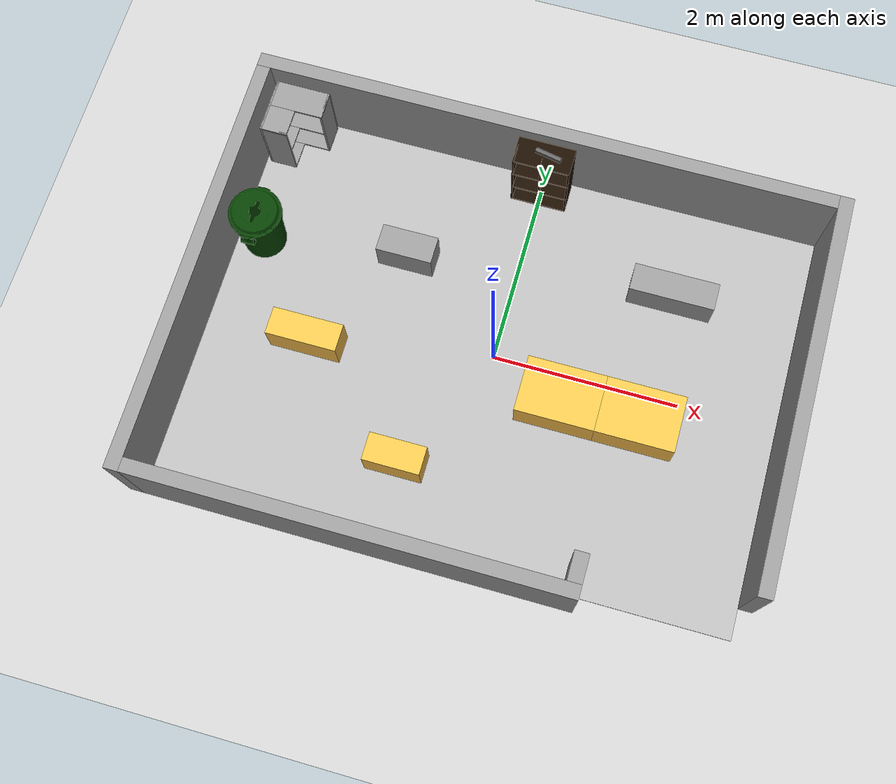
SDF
<sdf version="1.5">
 <world name="default">
  <scene><shadows>true</shadows></scene>
  <light name="sun" type="directional">
   <pose>0 0 10 0 -0 0</pose>
   <diffuse>0.8 0.8 0.8 1</diffuse>
   <specular>0.1 0.1 0.1 1</specular>
   <attenuation>
    <range>1000</range>
    <constant>0.9</constant>
    <linear>0.01</linear>
    <quadratic>0.001</quadratic>
   </attenuation>
   <direction>-0.5 0.5 -1</direction>
  </light>
  <physics type="ode">
   <max_step_size>0.001</max_step_size>
   <real_time_factor>1</real_time_factor>
   <real_time_update_rate>1000</real_time_update_rate>
   <gravity>0 0 -9.8</gravity>
  </physics>
  <include><uri>model://ground_plane</uri></include>
  <include><uri>model://Workshop</uri></include>
  <include><pose>-1.936710 -0.343286 0.013 0 0 -1.57</pose><uri>model://Box_15x30</uri></include>
  <include><pose>1.636 -0.3 0.013 0 0 0</pose><uri>model://Box_33x15</uri></include>
  <include><pose>0.8 -0.3 0.013 0 0 0</pose><uri>model://Box_33x15</uri></include>
  <include><pose>1.658951 1.141109 0.013 0 0 0</pose><uri>model://Box_36x15W</uri></include>
  <include><pose>0 1.986729 0.013002 0 0 0</pose><uri>model://6_Cube_StorageE</uri></include>
  <include><pose>-0.653226 -1.356719 0.013 0 0 0</pose><uri>model://Box_24x15M</uri></include>
  <include><pose>-1.184366 0.857670 0.013 0 0 0</pose><uri>model://Box_24x15W</uri></include>
  <include>
   <pose>-2.710050 1.858030 0.013 0 0 -1.574973</pose>
   <uri>model://Wall_Cabinet_Coin_24x30W</uri>
  </include>
  <include><pose>0.0443 1.991597 0.947936 0.194664 1.558386 0.000047</pose><uri>model://pole</uri></include>
  <include>
   <pose>-2.756142 0.652103 0.012998 0.00 0.000012 -0.001068</pose>
   <uri>model://first_2015_trash_can</uri>
  </include>
  <include>
   <pose>1.410258 1.102871 0.396594 0.021135 -0.024223 -0.000242</pose>
   <uri>model://washer</uri>
  </include>
  <include>
   <pose>1.325672 1.164408 0.396676 0.012398 -0.011495 0.000071</pose>
   <uri>model://washer</uri>
  </include>
  <plugin name="gazebo_ros_state" filename="libgazebo_ros_state.so"/>
 </world>
</sdf>

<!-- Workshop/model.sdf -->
<sdf version='1.6'>
  <model name='Workshop'>

    <link name='Wall_10'>
      <collision name='Wall_10_Collision'>
        <geometry>
          <box>
            <size>6.26 0.15 1</size>
          </box>
        </geometry>
        <pose frame=''>0 0 0.5 0 -0 0</pose>
      </collision>
      <visual name='Wall_10_Visual'>
        <pose frame=''>0 0 0.5 0 -0 0</pose>
        <geometry>
          <box>
            <size>6.26 0.15 1</size>
          </box>
        </geometry>
        <material>
          <script>
            <uri>file://media/materials/scripts/gazebo.material</uri>
            <name>Gazebo/Grey</name>
          </script>
          <ambient>0 0 0 1</ambient>
        </material>
      </visual>
      <pose frame=''>-0.0745 2.24856 0 0 0 0</pose>
    </link>
    <link name='Wall_11'>
      <collision name='Wall_11_Collision'>
        <geometry>
          <box>
            <size>4.199944 0.15 1</size>
          </box>
        </geometry>
        <pose frame=''>0 0 0.5 0 -0 0</pose>
      </collision>
      <visual name='Wall_11_Visual'>
        <pose frame=''>0 0 0.5 0 -0 0</pose>
        <geometry>
          <box>
            <size>4.199944 0.15 1</size>
          </box>
        </geometry>
        <material>
          <script>
            <uri>file://media/materials/scripts/gazebo.material</uri>
            <name>Gazebo/Grey</name>
          </script>
          <ambient>0 0 0 1</ambient>
        </material>
      </visual>
      <pose frame=''>3.12000 0.223500 0 0 0 -1.5708</pose>
    </link>
    <link name='Wall_13'>
      <collision name='Wall_13_Collision'>
        <geometry>
          <box>
            <size>4.557060 0.15 1</size>
          </box>
        </geometry>
        <pose frame=''>0 0 0.5 0 -0 0</pose>
      </collision>
      <visual name='Wall_13_Visual'>
        <pose frame=''>0 0 0.5 0 -0 0</pose>
        <geometry>
          <box>
            <size>4.557060 0.15 1</size>
          </box>
        </geometry>
        <material>
          <script>
            <uri>file://media/materials/scripts/gazebo.material</uri>
            <name>Gazebo/Grey</name>
          </script>
          <ambient>0 0 0 1</ambient>
        </material>
      </visual>
      <pose frame=''>-3.129500 -0.075000 0 0 0 -1.5708</pose>
    </link>
    <link name='Wall_15'>
      <collision name='Wall_15_Collision'>
        <geometry>
          <box>
            <size>4.521 0.15 1</size>
          </box>
        </geometry>
        <pose frame=''>0 0 0.5 0 -0 0</pose>
      </collision>
      <visual name='Wall_15_Visual'>
        <pose frame=''>0 0 0.5 0 -0 0</pose>
        <geometry>
          <box>
            <size>4.521 0.15 1</size>
          </box>
        </geometry>
        <material>
          <script>
            <uri>file://media/materials/scripts/gazebo.material</uri>
            <name>Gazebo/Grey</name>
          </script>
          <ambient>0 0 0 1</ambient>
        </material>
      </visual>
      <pose frame=''>-0.794000 -2.278500 0 0 -0 0</pose>
    </link>
    <link name='Wall_17'>
      <collision name='Wall_17_Collision'>
        <geometry>
          <box>
            <size>0.302 0.15 1</size>
          </box>
        </geometry>
        <pose frame=''>0 0 0.5 0 -0 0</pose>
      </collision>
      <visual name='Wall_17_Visual'>
        <pose frame=''>0 0 0.5 0 -0 0</pose>
        <geometry>
          <box>
            <size>0.302 0.15 1</size>
          </box>
        </geometry>
        <material>
          <script>
            <uri>file://media/materials/scripts/gazebo.material</uri>
            <name>Gazebo/Grey</name>
          </script>
          <ambient>0 0 0 1</ambient>
        </material>
      </visual>
      <pose frame=''>1.392000 -2.057440 0 0 -0 1.5708</pose>
    </link>
    <link name='Wall_19'>
      <collision name='Wall_19_Collision'>
        <geometry>
          <box>
            <size>6.099 4.38 0.013</size>
          </box>
        </geometry>
        <pose frame=''>0 0 0.0065 0 -0 0</pose>
	 <surface>
          <friction>
            <ode>
              <mu>1</mu>
              <mu2>1</mu2>
            </ode>
          </friction>
	<bounce/>
            <contact>
              <ode/>
            </contact>
        </surface>
 	<max_contacts>10</max_contacts>
      </collision>
      <visual name='Wall_19_Visual'>
        <pose frame=''>0 0 0.0065 0 -0 0</pose>
        <geometry>
          <box>
            <size>6.099 4.38 0.013</size>
          </box>
        </geometry>
           <material>
          <script>
            <uri>model://Workshop/materials/scripts</uri>
            <uri>model://Workshop/materials/textures</uri>
            <name>rubber</name>
          </script>
        </material>
      </visual>
      <pose frame=''>-0.005116 -0.013556 0 0 -0 0</pose>
 <velocity_decay>
          <linear>0</linear>
          <angular>0</angular>
        </velocity_decay>
        <self_collide>0</self_collide>
        <kinematic>0</kinematic>
        <gravity>1</gravity>
    </link>
    <static>1</static>
  </model>
</sdf>

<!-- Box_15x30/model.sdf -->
<sdf version='1.6'>
  <model name='Box_15x30'>
    <link name='Wall'>
     <pose frame=''>0 0.0 0.1985 0 0 0</pose>
	<inertial>
	  <mass>5</mass>
	   <inertia>
	     <ixx>0.3089</ixx>
	     <iyy>0.1022</iyy>
	     <izz>0.2797</izz>
    	     <ixy>0</ixy>
	     <ixz>0</ixz>
	     <iyz>0</iyz>
	   </inertia>
	</inertial>
      <collision name='Wall_Collision'>
        <geometry>
          <box>
            <size>0.296 0.764 0.397</size>
          </box>
        </geometry>
      </collision>
      <visual name='Wall_Visual'>
        <geometry>
          <box>
            <size>0.296 0.764 0.397</size>
          </box>
        </geometry>
        <material>
          <script>
            <uri>file://media/materials/scripts/gazebo.material</uri>
            <name>Gazebo/Grey</name>
          </script>
          <ambient>1 0.764706 0.305882 1</ambient>
        </material>
      </visual>
     </link>

    <static>1</static>
  </model>
</sdf>

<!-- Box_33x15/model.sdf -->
<sdf version='1.6'>
  <model name='Box_33x15'>
    <link name='Wall'>
    <pose frame=''>0 0 0.1985 0 0 0</pose>
	<inertial>
	  <mass>5</mass>
	   <inertia>
	     <ixx>0.2157</ixx>
	     <iyy>0.3597</iyy>
	     <izz>0.4440</izz>
    	     <ixy>0</ixy>
	     <ixz>0</ixz>
	     <iyz>0</iyz>
	   </inertia>
	</inertial>
      <collision name='Wall_Collision'>
        <geometry>
          <box>
            <size>0.84 0.6 0.397 </size>
          </box>
        </geometry>
       </collision>
      <visual name='Wall_Visual'>
       <geometry>
          <box>
            <size>0.84 0.6 0.397 </size>
          </box>
        </geometry>
        <material>
          <script>
            <uri>file://media/materials/scripts/gazebo.material</uri>
            <name>Gazebo/Grey</name>
          </script>
          <ambient>1 0.764706 0.305882 1</ambient>
        </material>
      </visual>
     </link>

    <static>1</static>
  </model>
</sdf>

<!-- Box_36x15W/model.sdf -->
<sdf version='1.6'>
  <model name='Box_36x15W'>
     <link name='Wall'>
 	<pose frame=''>0 0 0.1985 0 0 0</pose>
	<inertial>
	  <mass>5</mass>
	   <inertia>
	     <ixx>0.1022</ixx>
	     <iyy>0.4107</iyy>
	     <izz>0.3815</izz>
    	     <ixy>0</ixy>
	     <ixz>0</ixz>
	     <iyz>0</iyz>
	   </inertia>
	</inertial>
      <collision name='Wall_Collision'>
        <geometry>
          <box>
            <size>0.91 0.296 0.397</size>
          </box>
        </geometry>
      </collision>
      <visual name='Wall_Visual'>
          <geometry>
          <box>
            <size>0.91 0.296 0.397</size>
          </box>
        </geometry>
        <material>
          <script>
            <uri>file://media/materials/scripts/gazebo.material</uri>
            <name>Gazebo/Grey</name>
          </script>
          <ambient>1 1 1 1</ambient>
        </material>
      </visual>
    </link>

    <static>1</static>
  </model>
</sdf>

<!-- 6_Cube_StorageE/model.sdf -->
<sdf version='1.6'>
  <model name='6_Cube_StorageE'>

    <link name='Wall_0'>
    <pose frame=''>0 0 0.01 0 -0 0</pose>
	<inertial>
	  <mass>1.6201</mass>
	   <inertia>
	     <ixx>0.0119</ixx>
	     <iyy>0.0631</iyy>
	     <izz>0.0513</izz>
    	     <ixy>0</ixy>
	     <ixz>0</ixz>
	     <iyz>0</iyz>
	   </inertia>
	</inertial>
      <collision name='Wall_0_Collision'>
        <geometry>
          <box>
            <size>0.616 0.296 0.02</size>
          </box>
        </geometry>
      </collision>
      <visual name='Wall_0_Visual'>
        <geometry>
          <box>
            <size>0.616 0.296 0.02</size>
          </box>
        </geometry>
        <material>
          <script>
            <uri>file://media/materials/scripts/gazebo.material</uri>
            <name>Gazebo/Grey</name>
          </script>
          <ambient>0.105882 0.0509804 0 1</ambient>
        </material>
      </visual>
   </link>

     <joint type="fixed" name="0_2">
      <pose frame=''>-0.308 0 0 0 0 0</pose>
         <parent>Wall_2</parent>
  	 <child>Wall_0</child>
	 <axis>
	   <xyz>1 0 0</xyz>
	 </axis>
       </joint>

  <joint type="fixed" name="0_12">
      <pose frame=''>0 0 0 0 0 0</pose>
         <parent>Wall_12</parent>
  	 <child>Wall_0</child>
	 <axis>
	   <xyz>0 0 1</xyz>
	 </axis>
       </joint>

  <joint type="fixed" name="0_4">
      <pose frame=''>0.308 0 0 0 0 0</pose>
         <parent>Wall_4</parent>
  	 <child>Wall_0</child>
	 <axis>
	   <xyz>1 0 0</xyz>
	 </axis>
       </joint>

    <link name='Wall_10'>
      <pose frame=''>0 0 0.610 0 0 0</pose>
	<inertial>
	  <mass>1.6201</mass>
	   <inertia>
	     <ixx>0.0119</ixx>
	     <iyy>0.0631</iyy>
	     <izz>0.0513</izz>
    	     <ixy>0</ixy>
	     <ixz>0</ixz>
	     <iyz>0</iyz>
	   </inertia>
	</inertial>
      <collision name='Wall_10_Collision'>
        <geometry>
          <box>
            <size>0.616 0.296 0.02 </size>
          </box>
        </geometry>
      </collision>
      <visual name='Wall_10_Visual'>
          <geometry>
          <box>
            <size>0.616 0.296 0.02</size>
          </box>
        </geometry>
        <material>
          <script>
            <uri>file://media/materials/scripts/gazebo.material</uri>
            <name>Gazebo/Grey</name>
          </script>
          <ambient>0.105882 0.0509804 0 1</ambient>
        </material>
      </visual>
    </link>

     <joint type="fixed" name="10_2">
      <pose frame=''>-0.308 0 0 0 0 0</pose>
         <parent>Wall_2</parent>
  	 <child>Wall_10</child>
	 <axis>
	   <xyz>1 0 0</xyz>
	 </axis>
       </joint>

  <joint type="fixed" name="10_12">
      <pose frame=''>0 0 0 0 0 0</pose>
         <parent>Wall_12</parent>
  	 <child>Wall_10</child>
	 <axis>
	   <xyz>0 0 1</xyz>
	 </axis>
       </joint>

  <joint type="fixed" name="10_4">
      <pose frame=''>0.308 0 0 0 0 0</pose>
         <parent>Wall_4</parent>
  	 <child>Wall_10</child>
	 <axis>
	   <xyz>1 0 0</xyz>
	 </axis>
       </joint>

    <link name='Wall_12'>
  <pose frame=''>0 0 0.4575 0 0 0</pose>
	<inertial>
	  <mass>2.4065</mass>
	   <inertia>
	     <ixx>0.0177</ixx>
	     <iyy>0.1855</iyy>
	     <izz>0.1680</izz>
    	     <ixy>0</ixy>
	     <ixz>0</ixz>
	     <iyz>0</iyz>
	   </inertia>
	</inertial>
      <collision name='Wall_12_Collision'>
        <geometry>
          <box>
            <size>0.02 0.296 0.915</size>
          </box>
        </geometry>
      </collision>
      <visual name='Wall_12_Visual'>
         <geometry>
          <box>
            <size>0.02 0.296 0.915</size>
          </box>
        </geometry>
        <material>
          <script>
            <uri>file://media/materials/scripts/gazebo.material</uri>
            <name>Gazebo/Grey</name>
          </script>
          <ambient>0.105882 0.0509804 0 1</ambient>
        </material>
      </visual>
    </link>

    <link name='Wall_2'>
      <pose frame=''>-0.298 0 0.4575 0 0 0</pose>
	<inertial>
	  <mass>2.4065</mass>
	   <inertia>
	     <ixx>0.0177</ixx>
	     <iyy>0.1855</iyy>
	     <izz>0.1680</izz>
    	     <ixy>0</ixy>
	     <ixz>0</ixz>
	     <iyz>0</iyz>
	   </inertia>
	</inertial>
      <collision name='Wall_2_Collision'>
        <geometry>
          <box>
            <size>0.02 0.296 0.915</size>
          </box>
        </geometry>
      </collision>
      <visual name='Wall_2_Visual'>
        <geometry>
          <box>
            <size>0.02 0.296 0.915</size>
          </box>
        </geometry>
        <material>
          <script>
            <uri>file://media/materials/scripts/gazebo.material</uri>
            <name>Gazebo/Grey</name>
          </script>
          <ambient>0.105882 0.0509804 0 1</ambient>
        </material>
      </visual>
    </link>

    <link name='Wall_4'>
      <pose frame=''>0.298 0 0.4575 0 0 0</pose>
	<inertial>
	  <mass>2.4065</mass>
	   <inertia>
	     <ixx>0.0177</ixx>
	     <iyy>0.1855</iyy>
	     <izz>0.1680</izz>
    	     <ixy>0</ixy>
	     <ixz>0</ixz>
	     <iyz>0</iyz>
	   </inertia>
	</inertial>
      <collision name='Wall_4_Collision'>
        <geometry>
          <box>
            <size>0.02 0.296 0.915</size>
          </box>
        </geometry>
      </collision>
      <visual name='Wall_4_Visual'>
        <geometry>
          <box>
            <size>0.02 0.296 0.915</size>
          </box>
        </geometry>
        <material>
          <script>
            <uri>file://media/materials/scripts/gazebo.material</uri>
            <name>Gazebo/Grey</name>
          </script>
          <ambient>0.105882 0.0509804 0 1</ambient>
        </material>
      </visual>
    </link>

    <link name='Wall_6'>
     <pose frame=''>0 0 0.905 0 0 0</pose>
	<inertial>
	  <mass>1.6201</mass>
	   <inertia>
	     <ixx>0.0119</ixx>
	     <iyy>0.0631</iyy>
	     <izz>0.0513</izz>
    	     <ixy>0</ixy>
	     <ixz>0</ixz>
	     <iyz>0</iyz>
	   </inertia>
	</inertial>
      <collision name='Wall_6_Collision'>
        <geometry>
          <box>
            <size>0.616 0.296 0.02</size>
          </box>
        </geometry>
       </collision>
      <visual name='Wall_6_Visual'>
        <geometry>
          <box>
            <size>0.616 0.296 0.02</size>
          </box>
        </geometry>
        <material>
          <script>
            <uri>file://media/materials/scripts/gazebo.material</uri>
            <name>Gazebo/Grey</name>
          </script>
          <ambient>0.105882 0.0509804 0 1</ambient>
        </material>
      </visual>
     </link>

     <joint type="fixed" name="6_2">
      <pose frame=''>-0.308 0 0 0 0 0</pose>
         <parent>Wall_2</parent>
  	 <child>Wall_6</child>
	 <axis>
	   <xyz>2 0 0</xyz>
	 </axis>
       </joint>

  <joint type="fixed" name="6_12">
      <pose frame=''>0 0 0 0 0 0</pose>
         <parent>Wall_12</parent>
  	 <child>Wall_6</child>
	 <axis>
	   <xyz>0 0 1</xyz>
	 </axis>
       </joint>

  <joint type="fixed" name="6_4">
      <pose frame=''>0.308 0 0 0 0 0</pose>
         <parent>Wall_4</parent>
  	 <child>Wall_6</child>
	 <axis>
	   <xyz>1 0 0</xyz>
	 </axis>
       </joint>

    <link name='Wall_8'>
    <pose frame=''>0 0 0.305 0 0 0</pose>
	<inertial>
	  <mass>1.6201</mass>
	   <inertia>
	     <ixx>0.0119</ixx>
	     <iyy>0.0631</iyy>
	     <izz>0.0513</izz>
    	     <ixy>0</ixy>
	     <ixz>0</ixz>
	     <iyz>0</iyz>
	   </inertia>
	</inertial>
      <collision name='Wall_8_Collision'>
        <geometry>
          <box>
            <size>0.616 0.296 0.02</size>
          </box>
        </geometry>
       </collision>
      <visual name='Wall_8_Visual'>
        <geometry>
          <box>
            <size>0.616 0.296 0.02</size>
          </box>
        </geometry>
        <material>
          <script>
            <uri>file://media/materials/scripts/gazebo.material</uri>
            <name>Gazebo/Grey</name>
          </script>
          <ambient>0.105882 0.0509804 0 1</ambient>
        </material>
      </visual>
      </link>

     <joint type="fixed" name="8_2">
      <pose frame=''>-0.308 0 0 0 0 0</pose>
         <parent>Wall_2</parent>
  	 <child>Wall_8</child>
	 <axis>
	   <xyz>1 0 0</xyz>
	 </axis>
       </joint>

  <joint type="fixed" name="8_12">
      <pose frame=''>0 0 0 0 0 0</pose>
         <parent>Wall_12</parent>
  	 <child>Wall_8</child>
	 <axis>
	   <xyz>0 0 1</xyz>
	 </axis>
       </joint>

  <joint type="fixed" name="8_4">
      <pose frame=''>0.308 0 0 0 0 0</pose>
         <parent>Wall_4</parent>
  	 <child>Wall_8</child>
	 <axis>
	   <xyz>1 0 0</xyz>
	 </axis>
       </joint>

    <static>1</static>
  </model>
</sdf>

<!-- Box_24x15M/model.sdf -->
<sdf version='1.6'>
  <model name='Box_24x15M'>
    <link name='Wall'>
	<pose frame=''>0 0 0.1985 0 -0 0</pose>
	<inertial>
	  <mass>5</mass>
	   <inertia>
	     <ixx>0.1022</ixx>
	     <iyy>0.2197</iyy>
	     <izz>0.1905</izz>
    	     <ixy>0</ixy>
	     <ixz>0</ixz>
	     <iyz>0</iyz>
	   </inertia>
	</inertial>
      <collision name='Wall_Collision'>
        <geometry>
          <box>
            <size>0.608 0.296 0.397 </size>
          </box>
        </geometry>

      </collision>
      <visual name='Wall_Visual'>

        <geometry>
          <box>
            <size>0.608 0.296 0.397</size>
          </box>
        </geometry>
       <material>
          <script>
            <uri>file://media/materials/scripts/gazebo.material</uri>
            <name>Gazebo/Grey</name>
          </script>
          <ambient>1 0.764706 0.305882 1</ambient>
        </material>
      </visual>
    </link>

    <static>1</static>
  </model>
</sdf>

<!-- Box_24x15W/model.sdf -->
<sdf version='1.6'>
  <model name='Box_24x15W'>
    <link name='Wall'>
	<pose frame=''>0 0 0.1985 0 0 0</pose>
	<inertial>
	  <mass>5</mass>
	   <inertia>
	     <ixx>0.1022</ixx>
	     <iyy>0.2197</iyy>
	     <izz>0.1905</izz>
    	     <ixy>0</ixy>
	     <ixz>0</ixz>
	     <iyz>0</iyz>
	   </inertia>
	</inertial>
      <collision name='Wall_Collision'>
        <geometry>
          <box>
            <size>0.608 0.296 0.397 </size>
          </box>
        </geometry>

      </collision>
      <visual name='Wall_Visual'>

        <geometry>
          <box>
            <size>0.608 0.296 0.397</size>
          </box>
        </geometry>
        <material>
          <script>
            <uri>file://media/materials/scripts/gazebo.material</uri>
            <name>Gazebo/Grey</name>
          </script>
          <ambient>1 1 1 1</ambient>
        </material>
      </visual>
     </link>

    <static>1</static>
  </model>
</sdf>

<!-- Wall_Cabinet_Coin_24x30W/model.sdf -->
<sdf version='1.6'>
   <model name='Wall_Cabinet_Coin_24x30W'>
    <link name='Wall_10'>
     <pose frame=''>0.286 -0.148 0.384 0 0 0</pose>
	<inertial>
	  <mass>2.1259</mass>
	   <inertia>
	     <ixx>0.0158</ixx>
	     <iyy>0.1202</iyy>
	     <izz>0.1046</izz>
    	     <ixy>0</ixy>
	     <ixz>0</ixz>
	     <iyz>0</iyz>
	   </inertia>
	</inertial>
      <collision name='Wall_10_Collision'>
        <geometry>
          <box>
            <size> 0.02 0.296 0.768</size>
          </box>
        </geometry>
      </collision>
      <visual name='Wall_10_Visual'>
        <geometry>
          <box>
            <size>0.02 0.296 0.768</size>
          </box>
        </geometry>
        <material>
          <script>
            <uri>file://media/materials/scripts/gazebo.material</uri>
            <name>Gazebo/Grey</name>
          </script>
          <ambient>1 1 1 1</ambient>
        </material>
      </visual>
    </link>

     <joint type="fixed" name="10_16">
      <pose frame=''> 0 0 -0.374 0 0 0</pose>
         <parent>Wall_16</parent>
  	 <child>Wall_10</child>
	 <axis>
	   <xyz>1 0 0</xyz>
	 </axis>
       </joint>
   <joint type="fixed" name="10_14">
          <pose frame=''>0 0 0 0 0 0</pose>
         <parent>Wall_14</parent>
  	 <child>Wall_10</child>
	 <axis>
	   <xyz>1 0 0</xyz>
	 </axis>
       </joint>

   <joint type="fixed" name="10_12">
      <pose frame=''>0 0 0.374 0 0 0</pose>
         <parent>Wall_12</parent>
  	 <child>Wall_10</child>
	 <axis>
	   <xyz>1 0 0</xyz>
	 </axis>
       </joint>

   <joint type="fixed" name="10_29">
      <pose frame=''>0 -0.148 0 0 0 0</pose>
         <parent>Wall_29</parent>
  	 <child>Wall_10</child>
	 <axis>
	   <xyz>1 0 0</xyz>
	 </axis>
       </joint>

    <link name='Wall_12'>
   <pose frame=''>0.148 -0.148 0.758 0 0 0</pose>
	<inertial>
	  <mass>0.8802</mass>
	   <inertia>
	     <ixx>0.0065</ixx>
	     <iyy>0.0139</iyy>
	     <izz>0.0074</izz>
    	     <ixy>0</ixy>
	     <ixz>0</ixz>
	     <iyz>0</iyz>
	   </inertia>
	</inertial>
      <collision name='Wall_12_Collision'>
        <geometry>
          <box>
            <size>0.296 0.296 0.02</size>
          </box>
        </geometry>
      </collision>
      <visual name='Wall_12_Visual'>
        <geometry>
          <box>
            <size>0.296 0.296 0.02</size>
          </box>
        </geometry>
        <material>
          <script>
            <uri>file://media/materials/scripts/gazebo.material</uri>
            <name>Gazebo/Grey</name>
          </script>
          <ambient>1 1 1 1</ambient>
        </material>
      </visual>
     </link>

   <joint type="fixed" name="12_29">
      <pose frame=''>0 -0.148 0 0 0 0</pose>
         <parent>Wall_29</parent>
  	 <child>Wall_12</child>
	 <axis>
	   <xyz>0 0 1</xyz>
	 </axis>
       </joint>

    <link name='Wall_14'>
      <pose frame=''>0.148 -0.148 0.384 0 0 0</pose>
	<inertial>
	  <mass>0.8802</mass>
	   <inertia>
	     <ixx>0.0065</ixx>
	     <iyy>0.0139</iyy>
	     <izz>0.0074</izz>
    	     <ixy>0</ixy>
	     <ixz>0</ixz>
	     <iyz>0</iyz>
	   </inertia>
	</inertial>
      <collision name='Wall_14_Collision'>
        <geometry>
          <box>
            <size>0.296 0.296 0.02</size>
          </box>
        </geometry>
      </collision>
      <visual name='Wall_14_Visual'>
        <geometry>
          <box>
            <size>0.296 0.296 0.02</size>
          </box>
        </geometry>
        <material>
          <script>
            <uri>file://media/materials/scripts/gazebo.material</uri>
            <name>Gazebo/Grey</name>
          </script>
          <ambient>1 1 1 1</ambient>
        </material>
      </visual>
    </link>

   <joint type="fixed" name="14_29">
      <pose frame=''>0 -0.148 0 0 0 0</pose>
         <parent>Wall_29</parent>
  	 <child>Wall_14</child>
	 <axis>
	   <xyz>0 1 0</xyz>
	 </axis>
       </joint>

    <link name='Wall_16'>
      <pose frame=''>0.148 -0.148 0.01 0 0 0</pose>
	<inertial>
	  <mass>0.8802</mass>
	   <inertia>
	     <ixx>0.0065</ixx>
	     <iyy>0.0139</iyy>
	     <izz>0.0074</izz>
    	     <ixy>0</ixy>
	     <ixz>0</ixz>
	     <iyz>0</iyz>
	   </inertia>
	</inertial>
      <collision name='Wall_16_Collision'>
        <geometry>
          <box>
            <size>0.296 0.296 0.02 </size>
          </box>
        </geometry>
       </collision>
      <visual name='Wall_16_Visual'>
         <geometry>
          <box>
            <size>0.296 0.296 0.02</size>
          </box>
        </geometry>
        <material>
          <script>
            <uri>file://media/materials/scripts/gazebo.material</uri>
            <name>Gazebo/Grey</name>
          </script>
          <ambient>1 1 1 1</ambient>
        </material>
      </visual>
    </link>

   <joint type="fixed" name="16_29">
      <pose frame=''>0  -0.148 0 0 0 0</pose>
         <parent>Wall_29</parent>
  	 <child>Wall_16</child>
	 <axis>
	   <xyz>0 1 0</xyz>
	 </axis>
       </joint>

    <link name='Wall_18'>
      <pose frame=''>-0.148 0 0.01 0 0 0</pose>
	<inertial>
	  <mass>1.6525</mass>
	   <inertia>
	     <ixx>0.0491</ixx>
	     <iyy>0.0613</iyy>
	     <izz>0.0123</izz>
    	     <ixy>0</ixy>
	     <ixz>0</ixz>
	     <iyz>0</iyz>
	   </inertia>
	</inertial>
      <collision name='Wall_18_Collision'>
        <geometry>
          <box>
            <size>0.296 0.592 0.02</size>
          </box>
        </geometry>
        </collision>
      <visual name='Wall_18_Visual'>
        <geometry>
          <box>
            <size>0.296 0.592 0.02</size>
          </box>
        </geometry>
        <material>
          <script>
            <uri>file://media/materials/scripts/gazebo.material</uri>
            <name>Gazebo/Grey</name>
          </script>
          <ambient>1 1 1 1</ambient>
        </material>
      </visual>
    </link>

  <joint type="fixed" name="18_16">
      <pose frame=''> 0.148 -0.148 0 0 0 0</pose>
         <parent>Wall_16</parent>
  	 <child>Wall_18</child>
	 <axis>
	   <xyz>1 0 0</xyz>
	 </axis>
       </joint>

   <joint type="fixed" name="18_29">
          <pose frame=''>0 -0.296 0 0 0 0</pose>
         <parent>Wall_29</parent>
  	 <child>Wall_18</child>
	 <axis>
	   <xyz>0 1 0</xyz>
	 </axis>
       </joint>

   <joint type="fixed" name="18_27">
      <pose frame=''>-0.148 0 0 0 0 0</pose>
         <parent>Wall_27</parent>
  	 <child>Wall_18</child>
	 <axis>
	   <xyz>1 0 0</xyz>
	 </axis>
       </joint>

   <joint type="fixed" name="18_30">
      <pose frame=''>0 0.296 0 0 0 0</pose>
         <parent>Wall_30</parent>
  	 <child>Wall_18</child>
	 <axis>
	   <xyz>0 1 0</xyz>
	 </axis>
       </joint>

    <link name='Wall_20'>
      <pose frame=''>-0.148 0 0.384 0 0 0</pose>
	<inertial>
	  <mass>1.6525</mass>
	   <inertia>
	     <ixx>0.0491</ixx>
	     <iyy>0.0613</iyy>
	     <izz>0.0123</izz>
    	     <ixy>0</ixy>
	     <ixz>0</ixz>
	     <iyz>0</iyz>
	   </inertia>
	</inertial>
      <collision name='Wall_20_Collision'>
        <geometry>
          <box>
            <size>0.296 0.592 0.02</size>
          </box>
        </geometry>
      </collision>
      <visual name='Wall_20_Visual'>
        <geometry>
          <box>
            <size>0.296 0.592 0.02</size>
          </box>
        </geometry>
        <material>
          <script>
            <uri>file://media/materials/scripts/gazebo.material</uri>
            <name>Gazebo/Grey</name>
          </script>
          <ambient>1 1 1 1</ambient>
        </material>
      </visual>
    </link>

<joint type="fixed" name="20_14">
      <pose frame=''> 0.148 -0.148 0 0 0 0</pose>
         <parent>Wall_14</parent>
  	 <child>Wall_20</child>
	 <axis>
	   <xyz>1 0 0</xyz>
	 </axis>
       </joint>

   <joint type="fixed" name="20_29">
          <pose frame=''>0  -0.296 0 0 0 0</pose>
         <parent>Wall_29</parent>
  	 <child>Wall_20</child>
	 <axis>
	   <xyz>0 1 0</xyz>
	 </axis>
       </joint>

   <joint type="fixed" name="20_27">
      <pose frame=''>-0.148 0 0 0 0 0</pose>
         <parent>Wall_27</parent>
  	 <child>Wall_20</child>
	 <axis>
	   <xyz>1 0 0</xyz>
	 </axis>
       </joint>

   <joint type="fixed" name="20_30">
      <pose frame=''>0 0.296 0 0 0 0</pose>
         <parent>Wall_30</parent>
  	 <child>Wall_20</child>
	 <axis>
	   <xyz>0 1 0</xyz>
	 </axis>
       </joint>

    <link name='Wall_22'>
      <pose frame=''>-0.148 0 0.758 0 0 0</pose>
	<inertial>
	  <mass>1.6525</mass>
	   <inertia>
	     <ixx>0.0491</ixx>
	     <iyy>0.0613</iyy>
	     <izz>0.0123</izz>
    	     <ixy>0</ixy>
	     <ixz>0</ixz>
	     <iyz>0</iyz>
	   </inertia>
	</inertial>
      <collision name='Wall_22_Collision'>
        <geometry>
          <box>
            <size>0.296 0.592 0.02</size>
          </box>
        </geometry>
      </collision>
      <visual name='Wall_22_Visual'>
        <geometry>
          <box>
            <size>0.296 0.592 0.02</size>
          </box>
        </geometry>
        <material>
          <script>
            <uri>file://media/materials/scripts/gazebo.material</uri>
            <name>Gazebo/Grey</name>
          </script>
          <ambient>1 1 1 1</ambient>
        </material>
      </visual>
    </link>

<joint type="fixed" name="22_12">
      <pose frame=''> 0.148 -0.148 0 0 0 0</pose>
         <parent>Wall_12</parent>
  	 <child>Wall_22</child>
	 <axis>
	   <xyz>1 0 0</xyz>
	 </axis>
       </joint>

   <joint type="fixed" name="22_29">
          <pose frame=''>0 -0.296 0 0 0 0</pose>
         <parent>Wall_29</parent>
  	 <child>Wall_22</child>
	 <axis>
	   <xyz>0 1 0</xyz>
	 </axis>
       </joint>

   <joint type="fixed" name="22_27">
      <pose frame=''>-0.148 0 0 0 0 0</pose>
         <parent>Wall_27</parent>
  	 <child>Wall_22</child>
	 <axis>
	   <xyz>1 0 0</xyz>
	 </axis>
       </joint>

   <joint type="fixed" name="22_30">
      <pose frame=''>0 0.296 0 0 0 0</pose>
         <parent>Wall_30</parent>
  	 <child>Wall_22</child>
	 <axis>
	   <xyz>0 1 0</xyz>
	 </axis>
       </joint>

    <link name='Wall_27'>
      <pose frame=''>-0.286 0 0.384 0 0 0</pose>
	<inertial>
	  <mass>4.2589</mass>
	   <inertia>
	     <ixx>0.1266</ixx>
	     <iyy>0.3358</iyy>
	     <izz>0.2095</izz>
    	     <ixy>0</ixy>
	     <ixz>0</ixz>
	     <iyz>0</iyz>
	   </inertia>
	</inertial>
      <collision name='Wall_27_Collision'>
        <geometry>
          <box>
            <size>0.02 0.592 0.768</size>
          </box>
        </geometry>
      </collision>
      <visual name='Wall_27_Visual'>
        <geometry>
          <box>
            <size>0.02 0.592 0.768</size>
          </box>
        </geometry>
        <material>
          <script>
            <uri>file://media/materials/scripts/gazebo.material</uri>
            <name>Gazebo/Grey</name>
          </script>
          <ambient>1 1 1 1</ambient>
        </material>
      </visual>
    </link>

   <joint type="fixed" name="27_30">
      <pose frame=''>0 0.296 0 0 0 0</pose>
         <parent>Wall_30</parent>
  	 <child>Wall_27</child>
	 <axis>
	   <xyz>0 1 0</xyz>
	 </axis>
       </joint>

    <link name='Wall_29'>
     <pose frame=''>0 -0.286 0.384 0 0 0</pose>
	<inertial>
	  <mass>4.3176</mass>
	   <inertia>
	     <ixx>0.1340</ixx>
	     <iyy>0.2091</iyy>
	     <izz>0.3428</izz>
    	     <ixy>0</ixy>
	     <ixz>0</ixz>
	     <iyz>0</iyz>
	   </inertia>
	</inertial>
      <collision name='Wall_29_Collision'>
        <geometry>
          <box>
            <size> 0.592 0.02 0.768</size>
          </box>
        </geometry>
       </collision>
      <visual name='Wall_29_Visual'>
         <geometry>
          <box>
            <size>0.592 0.02 0.768</size>
          </box>
        </geometry>
        <material>
          <script>
            <uri>file://media/materials/scripts/gazebo.material</uri>
            <name>Gazebo/Grey</name>
          </script>
          <ambient>1 1 1 1</ambient>
        </material>
      </visual>
     </link>

 <link name='Wall_30'>
      <pose frame=''>-0.148 0.286 0.384 0 0 0</pose>
	<inertial>
	  <mass>2.1093</mass>
	   <inertia>
	     <ixx>0.1021</ixx>
	     <iyy>0.0157</iyy>
	     <izz>0.1177</izz>
    	     <ixy>0</ixy>
	     <ixz>0</ixz>
	     <iyz>0</iyz>
	   </inertia>
	</inertial>
      <collision name='Wall_30_Collision'>
        <geometry>
          <box>
            <size>0.296  0.02 0.768</size>
          </box>
        </geometry>
       </collision>
      <visual name='Wall_30_Visual'>
        <geometry>
          <box>
            <size>0.296  0.02 0.768</size>
          </box>
        </geometry>
        <material>
          <script>
            <uri>file://media/materials/scripts/gazebo.material</uri>
            <name>Gazebo/Grey</name>
          </script>
          <ambient>1 1 1 1</ambient>
        </material>
      </visual>
    </link>

    <static>1</static>
  </model>
</sdf>

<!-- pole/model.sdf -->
<sdf version="1.5">
 <!--pole-->
   <model name="pole">
    <link name="body">
    <inertial>
	<mass>2</mass>
	<inertia>
	 <ixx>0.00038054</ixx>
	 <iyy>0.00038054</iyy>
	 <izz>0.00064533</izz>
	 <ixy>0</ixy>
	 <ixz>0</ixz>
	 <iyz>0</iyz>
	</inertia>
       </inertial>

<!--pole Collision-->
     <collision name="pc1">
      <geometry>
        <box>
	  <size> 0.045 0.044 0.289849 </size>
	</box>
      </geometry>
     </collision>

 <!--pole Visual-->
    <visual name="pv1">
      <material>
        <diffuse>0.4 0.4 0.4 1.0</diffuse>
	<ambient>0.4 0.4 0.4 1.0</ambient>
	<specular>0.4 0.4 0.4 1.0</specular>
	<emissive>0.4 0.4 0.4 1.0</emissive>
      </material>
      <geometry>
        <box>
	  <size> 0.045 0.044 0.286849 </size>
	</box>
      </geometry>
     </visual>
  </link>
<static>1</static>
 </model>
</sdf>

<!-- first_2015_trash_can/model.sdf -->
<sdf version="1.5">
  <model name="first_2015_trash_can">
    <link name="link">
      <inertial>
        <pose>0 0 0.3683 0 0 0</pose>
        <mass>4.83076</mass>
        <inertia>
          <ixx>0.281534052</ixx>
          <ixy>0</ixy>
          <ixz>0</ixz>
          <iyy>0.281534052</iyy>
          <iyz>0</iyz>
          <izz>0.126222831</izz>
        </inertia>
      </inertial>

      <visual name="visual">
        <geometry>
          <mesh>
            <uri>model://first_2015_trash_can/meshes/trash_can.dae</uri>
          </mesh>
        </geometry>
      </visual>

      <collision name="collision">
        <geometry>
          <mesh>
            <uri>model://first_2015_trash_can/meshes/trash_can.dae</uri>
          </mesh>
        </geometry>
      </collision>
    </link>
  </model>
</sdf>

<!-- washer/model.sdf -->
<sdf version="1.5">
  <model name="washer">
    <link name="link">
      <pose>0 0 0.001 0 0 0</pose>
      <inertial>
        <mass>0.0122</mass>
        <inertia>
          <ixx>1.087579166666667e-06</ixx>
          <ixy>0</ixy>
          <ixz>0</ixz>
          <iyy>1.087579166666667e-06</iyy>
          <iyz>0</iyz>
          <izz>2.1670250000000002e-06</izz>
        </inertia>
      </inertial>

      <collision name="collision">
        <geometry>
          <mesh>
            <uri>model://washer/meshes/washer.dae</uri>
          </mesh>
        </geometry>
        <surface>
          <contact>
            <!-- stainless steel 18-8 -->
            <poissons_ratio>0.305</poissons_ratio>
            <elastic_modulus>2.0e+11</elastic_modulus>
            <ode>
              <kp>100000</kp>
              <kd>100</kd>
              <max_vel>100.0</max_vel>
              <min_depth>0.001</min_depth>
            </ode>
          </contact>
          <friction>
            <torsional>
              <coefficient>1.0</coefficient>
              <use_patch_radius>0</use_patch_radius>
              <surface_radius>0.01</surface_radius>
            </torsional>
          </friction>
        </surface>
      </collision>

      <visual name="visual">
        <geometry>
          <mesh>
            <uri>model://washer/meshes/washer.dae</uri>
          </mesh>
        </geometry>
        <material>
          <script>
            <uri>file://media/materials/scripts/gazebo.material</uri>
            <name>Gazebo/Grey</name>
          </script>
        </material>

      </visual>

    </link>
  </model>
</sdf>
